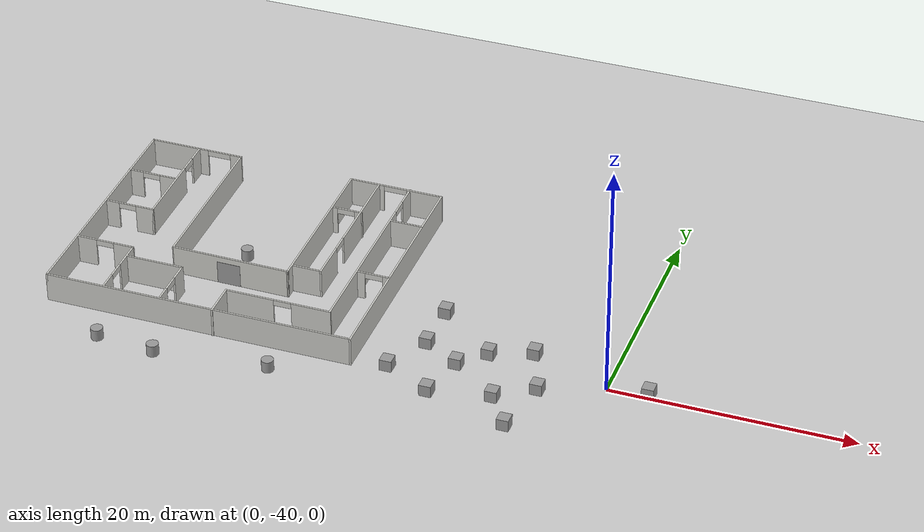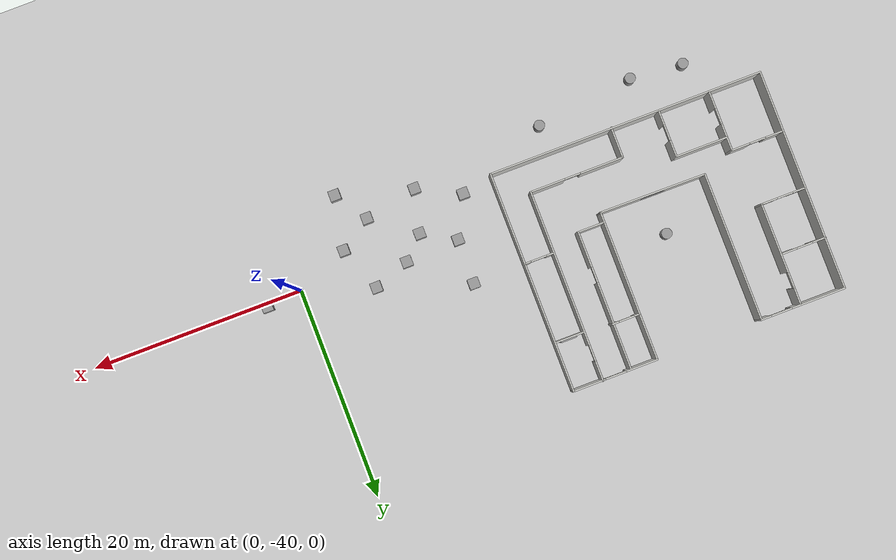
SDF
<sdf version="1.6">
 <world name="default">
  <model name="ground_plane">
   <static>1</static>
   <link name="link">
    <collision name="collision">
     <geometry><plane><normal>0 0 1</normal><size>100 100</size></plane></geometry>
     <surface><friction><ode><mu>100</mu><mu2>50</mu2></ode></friction></surface>
    </collision>
    <visual name="visual">
     <cast_shadows>0</cast_shadows>
     <geometry><plane><normal>0 0 1</normal><size>100 100</size></plane></geometry>
     <material>
      <script><uri>file://media/materials/scripts/gazebo.material</uri><name>Gazebo/Grey</name></script>
     </material>
    </visual>
   </link>
  </model>
  <model name="Multi_25_5">
   <pose>-32.8587 -33.1617 0 0 -0 0</pose>
   <link name="Door_69">
    <collision name="Door_69_Collision">
     <geometry><box><size>2 0.17 2</size></box></geometry>
     <pose>0 0 1 0 -0 0</pose>
    </collision>
    <visual name="Door_69_Visual">
     <pose>0 0 1 0 -0 0</pose>
     <geometry><box><size>2 0.17 2</size></box></geometry>
     <material>
      <script><uri>file://media/materials/scripts/gazebo.material</uri><name>Gazebo/Grey</name></script>
     </material>
    </visual>
    <pose>-0.131957 -3.62609 0 0 -0 3.13159</pose>
   </link>
   <link name="Door_82">
    <collision name="Door_82_Collision">
     <geometry><box><size>1.5 0.17 2</size></box></geometry>
     <pose>0 0 1 0 -0 0</pose>
    </collision>
    <visual name="Door_82_Visual">
     <pose>0 0 1 0 -0 0</pose>
     <geometry><box><size>1.5 0.17 2</size></box></geometry>
     <material>
      <script><uri>file://media/materials/scripts/gazebo.material</uri><name>Gazebo/Grey</name></script>
     </material>
    </visual>
    <pose>11.6853 5.93089 0 0 -0 0</pose>
   </link>
   <link name="Wall_211">
    <pose>-8.98496 10.4229 0 0 -0 0</pose>
    <visual name="Wall_211_Visual_0">
     <pose>-1.51563 0 1.25 0 -0 0</pose>
     <geometry><box><size>5.11875 0.15 2.5</size></box></geometry>
     <material>
      <script><uri>file://media/materials/scripts/gazebo.material</uri><name>Gazebo/CeilingTiled</name></script>
      <ambient>1 1 1 1</ambient>
     </material>
     <meta><layer>0</layer></meta>
    </visual>
    <collision name="Wall_211_Collision_0">
     <geometry><box><size>5.11875 0.15 2.5</size></box></geometry>
     <pose>-1.51563 0 1.25 0 -0 0</pose>
    </collision>
    <visual name="Wall_211_Visual_1">
     <pose>3.55937 0 1.25 0 -0 0</pose>
     <geometry><box><size>1.03125 0.15 2.5</size></box></geometry>
     <material>
      <script><uri>file://media/materials/scripts/gazebo.material</uri><name>Gazebo/CeilingTiled</name></script>
      <ambient>1 1 1 1</ambient>
     </material>
     <meta><layer>0</layer></meta>
    </visual>
    <collision name="Wall_211_Collision_1">
     <geometry><box><size>1.03125 0.15 2.5</size></box></geometry>
     <pose>3.55937 0 1.25 0 -0 0</pose>
    </collision>
    <visual name="Wall_211_Visual_2">
     <pose>2.04375 0 2.25 0 -0 0</pose>
     <geometry><box><size>2 0.15 0.5</size></box></geometry>
     <material>
      <script><uri>file://media/materials/scripts/gazebo.material</uri><name>Gazebo/CeilingTiled</name></script>
      <ambient>1 1 1 1</ambient>
     </material>
     <meta><layer>0</layer></meta>
    </visual>
    <collision name="Wall_211_Collision_2">
     <geometry><box><size>2 0.15 0.5</size></box></geometry>
     <pose>2.04375 0 2.25 0 -0 0</pose>
    </collision>
   </link>
   <link name="Wall_213">
    <collision name="Wall_213_Collision">
     <geometry><box><size>14.15 0.15 2.5</size></box></geometry>
     <pose>0 0 1.25 0 -0 0</pose>
    </collision>
    <visual name="Wall_213_Visual">
     <pose>0 0 1.25 0 -0 0</pose>
     <geometry><box><size>14.15 0.15 2.5</size></box></geometry>
     <material>
      <script><uri>file://media/materials/scripts/gazebo.material</uri><name>Gazebo/CeilingTiled</name></script>
      <ambient>1 1 1 1</ambient>
     </material>
     <meta><layer>0</layer></meta>
    </visual>
    <pose>-4.98496 3.42291 0 0 -0 1.5708</pose>
   </link>
   <link name="Wall_215">
    <pose>9.01504 10.4229 0 0 -0 0</pose>
    <visual name="Wall_215_Visual_0">
     <pose>-2.56473 0 1.25 0 -0 0</pose>
     <geometry><box><size>3.02055 0.15 2.5</size></box></geometry>
     <material>
      <script><uri>file://media/materials/scripts/gazebo.material</uri><name>Gazebo/CeilingTiled</name></script>
      <ambient>1 1 1 1</ambient>
     </material>
     <meta><layer>0</layer></meta>
    </visual>
    <collision name="Wall_215_Collision_0">
     <geometry><box><size>3.02055 0.15 2.5</size></box></geometry>
     <pose>-2.56473 0 1.25 0 -0 0</pose>
    </collision>
    <visual name="Wall_215_Visual_1">
     <pose>2.51028 0 1.25 0 -0 0</pose>
     <geometry><box><size>3.12945 0.15 2.5</size></box></geometry>
     <material>
      <script><uri>file://media/materials/scripts/gazebo.material</uri><name>Gazebo/CeilingTiled</name></script>
      <ambient>1 1 1 1</ambient>
     </material>
     <meta><layer>0</layer></meta>
    </visual>
    <collision name="Wall_215_Collision_1">
     <geometry><box><size>3.12945 0.15 2.5</size></box></geometry>
     <pose>2.51028 0 1.25 0 -0 0</pose>
    </collision>
    <visual name="Wall_215_Visual_2">
     <pose>-0.054451 0 2.25 0 -0 0</pose>
     <geometry><box><size>2 0.15 0.5</size></box></geometry>
     <material>
      <script><uri>file://media/materials/scripts/gazebo.material</uri><name>Gazebo/CeilingTiled</name></script>
      <ambient>1 1 1 1</ambient>
     </material>
     <meta><layer>0</layer></meta>
    </visual>
    <collision name="Wall_215_Collision_2">
     <geometry><box><size>2 0.15 0.5</size></box></geometry>
     <pose>-0.054451 0 2.25 0 -0 0</pose>
    </collision>
   </link>
   <link name="Wall_217">
    <collision name="Wall_217_Collision">
     <geometry><box><size>14.25 0.15 2.5</size></box></geometry>
     <pose>0 0 1.25 0 -0 0</pose>
    </collision>
    <visual name="Wall_217_Visual">
     <pose>0 0 1.25 0 -0 0</pose>
     <geometry><box><size>14.25 0.15 2.5</size></box></geometry>
     <material>
      <script><uri>file://media/materials/scripts/gazebo.material</uri><name>Gazebo/CeilingTiled</name></script>
      <ambient>1 1 1 1</ambient>
     </material>
     <meta><layer>0</layer></meta>
    </visual>
    <pose>5.01504 3.37291 0 0 -0 -1.5708</pose>
   </link>
   <link name="Wall_219">
    <collision name="Wall_219_Collision">
     <geometry><box><size>21 0.15 2.5</size></box></geometry>
     <pose>0 0 1.25 0 -0 0</pose>
    </collision>
    <visual name="Wall_219_Visual">
     <pose>0 0 1.25 0 -0 0</pose>
     <geometry><box><size>21 0.15 2.5</size></box></geometry>
     <material>
      <script><uri>file://media/materials/scripts/gazebo.material</uri><name>Gazebo/CeilingTiled</name></script>
      <ambient>1 1 1 1</ambient>
     </material>
     <meta><layer>0</layer></meta>
    </visual>
    <pose>-12.985 -0.002094 0 0 -0 -1.5708</pose>
   </link>
   <link name="Wall_221">
    <collision name="Wall_221_Collision">
     <geometry><box><size>26 0.15 2.5</size></box></geometry>
     <pose>0 0 1.25 0 -0 0</pose>
    </collision>
    <visual name="Wall_221_Visual">
     <pose>0 0 1.25 0 -0 0</pose>
     <geometry><box><size>26 0.15 2.5</size></box></geometry>
     <material>
      <script><uri>file://media/materials/scripts/gazebo.material</uri><name>Gazebo/CeilingTiled</name></script>
      <ambient>1 1 1 1</ambient>
     </material>
     <meta><layer>0</layer></meta>
    </visual>
    <pose>-0.059957 -10.4271 0 0 -0 0</pose>
   </link>
   <link name="Wall_223">
    <collision name="Wall_223_Collision">
     <geometry><box><size>21 0.15 2.5</size></box></geometry>
     <pose>0 0 1.25 0 -0 0</pose>
    </collision>
    <visual name="Wall_223_Visual">
     <pose>0 0 1.25 0 -0 0</pose>
     <geometry><box><size>21 0.15 2.5</size></box></geometry>
     <material>
      <script><uri>file://media/materials/scripts/gazebo.material</uri><name>Gazebo/CeilingTiled</name></script>
      <ambient>1 1 1 1</ambient>
     </material>
     <meta><layer>0</layer></meta>
    </visual>
    <pose>13.015 -0.002094 0 0 -0 -1.5708</pose>
   </link>
   <link name="Wall_225">
    <collision name="Wall_225_Collision">
     <geometry><box><size>10.1505 0.15 2.5</size></box></geometry>
     <pose>0 0 1.25 0 -0 0</pose>
    </collision>
    <visual name="Wall_225_Visual">
     <pose>0 0 1.25 0 -0 0</pose>
     <geometry><box><size>10.1505 0.15 2.5</size></box></geometry>
     <material>
      <script><uri>file://media/materials/scripts/gazebo.material</uri><name>Gazebo/CeilingTiled</name></script>
      <ambient>1 1 1 1</ambient>
     </material>
     <meta><layer>0</layer></meta>
    </visual>
    <pose>0.015043 -3.62709 0 0 -0 -0.01</pose>
   </link>
   <link name="Wall_228">
    <pose>-8.76574 5.56409 0 0 -0 -1.5708</pose>
    <visual name="Wall_228_Visual_0">
     <pose>-4.05643 0 1.25 0 -0 0</pose>
     <geometry><box><size>1.63713 0.15 2.5</size></box></geometry>
     <material>
      <script><uri>file://media/materials/scripts/gazebo.material</uri><name>Gazebo/CeilingTiled</name></script>
      <ambient>1 1 1 1</ambient>
     </material>
     <meta><layer>0</layer></meta>
    </visual>
    <collision name="Wall_228_Collision_0">
     <geometry><box><size>1.63713 0.15 2.5</size></box></geometry>
     <pose>-4.05643 0 1.25 0 -0 0</pose>
    </collision>
    <visual name="Wall_228_Visual_1">
     <pose>1.56857 0 1.25 0 -0 0</pose>
     <geometry><box><size>6.61287 0.15 2.5</size></box></geometry>
     <material>
      <script><uri>file://media/materials/scripts/gazebo.material</uri><name>Gazebo/CeilingTiled</name></script>
      <ambient>1 1 1 1</ambient>
     </material>
     <meta><layer>0</layer></meta>
    </visual>
    <collision name="Wall_228_Collision_1">
     <geometry><box><size>6.61287 0.15 2.5</size></box></geometry>
     <pose>1.56857 0 1.25 0 -0 0</pose>
    </collision>
    <visual name="Wall_228_Visual_2">
     <pose>-2.48787 0 2.25 0 -0 0</pose>
     <geometry><box><size>1.5 0.15 0.5</size></box></geometry>
     <material>
      <script><uri>file://media/materials/scripts/gazebo.material</uri><name>Gazebo/CeilingTiled</name></script>
      <ambient>1 1 1 1</ambient>
     </material>
     <meta><layer>0</layer></meta>
    </visual>
    <collision name="Wall_228_Collision_2">
     <geometry><box><size>1.5 0.15 0.5</size></box></geometry>
     <pose>-2.48787 0 2.25 0 -0 0</pose>
    </collision>
   </link>
   <link name="Wall_229">
    <pose>-10.8157 0.764087 0 0 -0 3.14159</pose>
    <visual name="Wall_229_Visual_0">
     <pose>-1.33413 0 1.25 0 -0 0</pose>
     <geometry><box><size>1.58174 0.15 2.5</size></box></geometry>
     <material>
      <script><uri>file://media/materials/scripts/gazebo.material</uri><name>Gazebo/CeilingTiled</name></script>
      <ambient>1 1 1 1</ambient>
     </material>
     <meta><layer>0</layer></meta>
    </visual>
    <collision name="Wall_229_Collision_0">
     <geometry><box><size>1.58174 0.15 2.5</size></box></geometry>
     <pose>-1.33413 0 1.25 0 -0 0</pose>
    </collision>
    <visual name="Wall_229_Visual_1">
     <pose>1.54087 0 1.25 0 -0 0</pose>
     <geometry><box><size>1.16826 0.15 2.5</size></box></geometry>
     <material>
      <script><uri>file://media/materials/scripts/gazebo.material</uri><name>Gazebo/CeilingTiled</name></script>
      <ambient>1 1 1 1</ambient>
     </material>
     <meta><layer>0</layer></meta>
    </visual>
    <collision name="Wall_229_Collision_1">
     <geometry><box><size>1.16826 0.15 2.5</size></box></geometry>
     <pose>1.54087 0 1.25 0 -0 0</pose>
    </collision>
    <visual name="Wall_229_Visual_2">
     <pose>0.206745 0 2.25 0 -0 0</pose>
     <geometry><box><size>1.5 0.15 0.5</size></box></geometry>
     <material>
      <script><uri>file://media/materials/scripts/gazebo.material</uri><name>Gazebo/CeilingTiled</name></script>
      <ambient>1 1 1 1</ambient>
     </material>
     <meta><layer>0</layer></meta>
    </visual>
    <collision name="Wall_229_Collision_2">
     <geometry><box><size>1.5 0.15 0.5</size></box></geometry>
     <pose>0.206745 0 2.25 0 -0 0</pose>
    </collision>
   </link>
   <link name="Wall_231">
    <pose>-10.965 5.58324 0 0 -0 0</pose>
    <visual name="Wall_231_Visual_0">
     <pose>-1.46622 0 1.25 0 -0 0</pose>
     <geometry><box><size>1.31756 0.15 2.5</size></box></geometry>
     <material>
      <script><uri>file://media/materials/scripts/gazebo.material</uri><name>Gazebo/CeilingTiled</name></script>
      <ambient>1 1 1 1</ambient>
     </material>
     <meta><layer>0</layer></meta>
    </visual>
    <collision name="Wall_231_Collision_0">
     <geometry><box><size>1.31756 0.15 2.5</size></box></geometry>
     <pose>-1.46622 0 1.25 0 -0 0</pose>
    </collision>
    <visual name="Wall_231_Visual_1">
     <pose>1.40878 0 1.25 0 -0 0</pose>
     <geometry><box><size>1.43244 0.15 2.5</size></box></geometry>
     <material>
      <script><uri>file://media/materials/scripts/gazebo.material</uri><name>Gazebo/CeilingTiled</name></script>
      <ambient>1 1 1 1</ambient>
     </material>
     <meta><layer>0</layer></meta>
    </visual>
    <collision name="Wall_231_Collision_1">
     <geometry><box><size>1.43244 0.15 2.5</size></box></geometry>
     <pose>1.40878 0 1.25 0 -0 0</pose>
    </collision>
    <visual name="Wall_231_Visual_2">
     <pose>-0.057438 0 2.25 0 -0 0</pose>
     <geometry><box><size>1.5 0.15 0.5</size></box></geometry>
     <material>
      <script><uri>file://media/materials/scripts/gazebo.material</uri><name>Gazebo/CeilingTiled</name></script>
      <ambient>1 1 1 1</ambient>
     </material>
     <meta><layer>0</layer></meta>
    </visual>
    <collision name="Wall_231_Collision_2">
     <geometry><box><size>1.5 0.15 0.5</size></box></geometry>
     <pose>-0.057438 0 2.25 0 -0 0</pose>
    </collision>
   </link>
   <link name="Wall_233">
    <collision name="Wall_233_Collision">
     <geometry><box><size>2.5 0.15 2.5</size></box></geometry>
     <pose>0 0 1.25 0 -0 0</pose>
    </collision>
    <visual name="Wall_233_Visual">
     <pose>0 0 1.25 0 -0 0</pose>
     <geometry><box><size>2.5 0.15 2.5</size></box></geometry>
     <material>
      <script><uri>file://media/materials/scripts/gazebo.material</uri><name>Gazebo/CeilingTiled</name></script>
      <ambient>1 1 1 1</ambient>
     </material>
     <meta><layer>0</layer></meta>
    </visual>
    <pose>6.33798 -2.74269 0 0 -0 0</pose>
   </link>
   <link name="Wall_234">
    <pose>7.51298 3.80731 0 0 -0 1.5708</pose>
    <visual name="Wall_234_Visual_0">
     <pose>-4.90273 0 1.25 0 -0 0</pose>
     <geometry><box><size>3.44454 0.15 2.5</size></box></geometry>
     <material>
      <script><uri>file://media/materials/scripts/gazebo.material</uri><name>Gazebo/CeilingTiled</name></script>
      <ambient>1 1 1 1</ambient>
     </material>
     <meta><layer>0</layer></meta>
    </visual>
    <collision name="Wall_234_Collision_0">
     <geometry><box><size>3.44454 0.15 2.5</size></box></geometry>
     <pose>-4.90273 0 1.25 0 -0 0</pose>
    </collision>
    <visual name="Wall_234_Visual_1">
     <pose>2.47227 0 1.25 0 -0 0</pose>
     <geometry><box><size>8.30546 0.15 2.5</size></box></geometry>
     <material>
      <script><uri>file://media/materials/scripts/gazebo.material</uri><name>Gazebo/CeilingTiled</name></script>
      <ambient>1 1 1 1</ambient>
     </material>
     <meta><layer>0</layer></meta>
    </visual>
    <collision name="Wall_234_Collision_1">
     <geometry><box><size>8.30546 0.15 2.5</size></box></geometry>
     <pose>2.47227 0 1.25 0 -0 0</pose>
    </collision>
    <visual name="Wall_234_Visual_2">
     <pose>-2.43046 0 2.25 0 -0 0</pose>
     <geometry><box><size>1.5 0.15 0.5</size></box></geometry>
     <material>
      <script><uri>file://media/materials/scripts/gazebo.material</uri><name>Gazebo/CeilingTiled</name></script>
      <ambient>1 1 1 1</ambient>
     </material>
     <meta><layer>0</layer></meta>
    </visual>
    <collision name="Wall_234_Collision_2">
     <geometry><box><size>1.5 0.15 0.5</size></box></geometry>
     <pose>-2.43046 0 2.25 0 -0 0</pose>
    </collision>
   </link>
   <link name="Wall_236">
    <pose>10.2182 1.425 0 0 -0 -1.5708</pose>
    <visual name="Wall_236_Visual_0">
     <pose>-8.1574 0 1.25 0 -0 0</pose>
     <geometry><box><size>1.9352 0.15 2.5</size></box></geometry>
     <material>
      <script><uri>file://media/materials/scripts/gazebo.material</uri><name>Gazebo/CeilingTiled</name></script>
      <ambient>1 1 1 1</ambient>
     </material>
     <meta><layer>0</layer></meta>
    </visual>
    <collision name="Wall_236_Collision_0">
     <geometry><box><size>1.9352 0.15 2.5</size></box></geometry>
     <pose>-8.1574 0 1.25 0 -0 0</pose>
    </collision>
    <visual name="Wall_236_Visual_1">
     <pose>1.7176 0 1.25 0 -0 0</pose>
     <geometry><box><size>14.8148 0.15 2.5</size></box></geometry>
     <material>
      <script><uri>file://media/materials/scripts/gazebo.material</uri><name>Gazebo/CeilingTiled</name></script>
      <ambient>1 1 1 1</ambient>
     </material>
     <meta><layer>0</layer></meta>
    </visual>
    <collision name="Wall_236_Collision_1">
     <geometry><box><size>14.8148 0.15 2.5</size></box></geometry>
     <pose>1.7176 0 1.25 0 -0 0</pose>
    </collision>
    <visual name="Wall_236_Visual_2">
     <pose>-6.4398 0 2.25 0 -0 0</pose>
     <geometry><box><size>1.5 0.15 0.5</size></box></geometry>
     <material>
      <script><uri>file://media/materials/scripts/gazebo.material</uri><name>Gazebo/CeilingTiled</name></script>
      <ambient>1 1 1 1</ambient>
     </material>
     <meta><layer>0</layer></meta>
    </visual>
    <collision name="Wall_236_Collision_2">
     <geometry><box><size>1.5 0.15 0.5</size></box></geometry>
     <pose>-6.4398 0 2.25 0 -0 0</pose>
    </collision>
   </link>
   <link name="Wall_237">
    <pose>5.79317 -7.625 0 0 -0 3.14159</pose>
    <visual name="Wall_237_Visual_0">
     <pose>-2.82619 0 1.25 0 -0 0</pose>
     <geometry><box><size>3.34763 0.15 2.5</size></box></geometry>
     <material>
      <script><uri>file://media/materials/scripts/gazebo.material</uri><name>Gazebo/CeilingTiled</name></script>
      <ambient>1 1 1 1</ambient>
     </material>
     <meta><layer>0</layer></meta>
    </visual>
    <collision name="Wall_237_Collision_0">
     <geometry><box><size>3.34763 0.15 2.5</size></box></geometry>
     <pose>-2.82619 0 1.25 0 -0 0</pose>
    </collision>
    <visual name="Wall_237_Visual_1">
     <pose>2.42381 0 1.25 0 -0 0</pose>
     <geometry><box><size>4.15237 0.15 2.5</size></box></geometry>
     <material>
      <script><uri>file://media/materials/scripts/gazebo.material</uri><name>Gazebo/CeilingTiled</name></script>
      <ambient>1 1 1 1</ambient>
     </material>
     <meta><layer>0</layer></meta>
    </visual>
    <collision name="Wall_237_Collision_1">
     <geometry><box><size>4.15237 0.15 2.5</size></box></geometry>
     <pose>2.42381 0 1.25 0 -0 0</pose>
    </collision>
    <visual name="Wall_237_Visual_2">
     <pose>-0.40237 0 2.25 0 -0 0</pose>
     <geometry><box><size>1.5 0.15 0.5</size></box></geometry>
     <material>
      <script><uri>file://media/materials/scripts/gazebo.material</uri><name>Gazebo/CeilingTiled</name></script>
      <ambient>1 1 1 1</ambient>
     </material>
     <meta><layer>0</layer></meta>
    </visual>
    <collision name="Wall_237_Collision_2">
     <geometry><box><size>1.5 0.15 0.5</size></box></geometry>
     <pose>-0.40237 0 2.25 0 -0 0</pose>
    </collision>
   </link>
   <link name="Wall_238">
    <collision name="Wall_238_Collision">
     <geometry><box><size>3 0.15 2.5</size></box></geometry>
     <pose>0 0 1.25 0 -0 0</pose>
    </collision>
    <visual name="Wall_238_Visual">
     <pose>0 0 1.25 0 -0 0</pose>
     <geometry><box><size>3 0.15 2.5</size></box></geometry>
     <material>
      <script><uri>file://media/materials/scripts/gazebo.material</uri><name>Gazebo/CeilingTiled</name></script>
      <ambient>1 1 1 1</ambient>
     </material>
     <meta><layer>0</layer></meta>
    </visual>
    <pose>1.36817 -9.05 0 0 -0 -1.5708</pose>
   </link>
   <link name="Wall_240">
    <pose>-10.4738 -4.71873 0 0 -0 0</pose>
    <visual name="Wall_240_Visual_0">
     <pose>-1.6498 0 1.25 0 -0 0</pose>
     <geometry><box><size>1.7004 0.15 2.5</size></box></geometry>
     <material>
      <script><uri>file://media/materials/scripts/gazebo.material</uri><name>Gazebo/CeilingTiled</name></script>
      <ambient>1 1 1 1</ambient>
     </material>
     <meta><layer>0</layer></meta>
    </visual>
    <collision name="Wall_240_Collision_0">
     <geometry><box><size>1.7004 0.15 2.5</size></box></geometry>
     <pose>-1.6498 0 1.25 0 -0 0</pose>
    </collision>
    <visual name="Wall_240_Visual_1">
     <pose>1.6002 0 1.25 0 -0 0</pose>
     <geometry><box><size>1.7996 0.15 2.5</size></box></geometry>
     <material>
      <script><uri>file://media/materials/scripts/gazebo.material</uri><name>Gazebo/CeilingTiled</name></script>
      <ambient>1 1 1 1</ambient>
     </material>
     <meta><layer>0</layer></meta>
    </visual>
    <collision name="Wall_240_Collision_1">
     <geometry><box><size>1.7996 0.15 2.5</size></box></geometry>
     <pose>1.6002 0 1.25 0 -0 0</pose>
    </collision>
    <visual name="Wall_240_Visual_2">
     <pose>-0.049598 0 2.25 0 -0 0</pose>
     <geometry><box><size>1.5 0.15 0.5</size></box></geometry>
     <material>
      <script><uri>file://media/materials/scripts/gazebo.material</uri><name>Gazebo/CeilingTiled</name></script>
      <ambient>1 1 1 1</ambient>
     </material>
     <meta><layer>0</layer></meta>
    </visual>
    <collision name="Wall_240_Collision_2">
     <geometry><box><size>1.5 0.15 0.5</size></box></geometry>
     <pose>-0.049598 0 2.25 0 -0 0</pose>
    </collision>
   </link>
   <link name="Wall_241">
    <pose>-8.04881 -7.51873 0 0 -0 -1.5708</pose>
    <visual name="Wall_241_Visual_0">
     <pose>-1.55029 0 1.25 0 -0 0</pose>
     <geometry><box><size>2.64942 0.15 2.5</size></box></geometry>
     <material>
      <script><uri>file://media/materials/scripts/gazebo.material</uri><name>Gazebo/CeilingTiled</name></script>
      <ambient>1 1 1 1</ambient>
     </material>
     <meta><layer>0</layer></meta>
    </visual>
    <collision name="Wall_241_Collision_0">
     <geometry><box><size>2.64942 0.15 2.5</size></box></geometry>
     <pose>-1.55029 0 1.25 0 -0 0</pose>
    </collision>
    <visual name="Wall_241_Visual_1">
     <pose>2.07471 0 1.25 0 -0 0</pose>
     <geometry><box><size>1.60058 0.15 2.5</size></box></geometry>
     <material>
      <script><uri>file://media/materials/scripts/gazebo.material</uri><name>Gazebo/CeilingTiled</name></script>
      <ambient>1 1 1 1</ambient>
     </material>
     <meta><layer>0</layer></meta>
    </visual>
    <collision name="Wall_241_Collision_1">
     <geometry><box><size>1.60058 0.15 2.5</size></box></geometry>
     <pose>2.07471 0 1.25 0 -0 0</pose>
    </collision>
    <visual name="Wall_241_Visual_2">
     <pose>0.524425 0 2.25 0 -0 0</pose>
     <geometry><box><size>1.5 0.15 0.5</size></box></geometry>
     <material>
      <script><uri>file://media/materials/scripts/gazebo.material</uri><name>Gazebo/CeilingTiled</name></script>
      <ambient>1 1 1 1</ambient>
     </material>
     <meta><layer>0</layer></meta>
    </visual>
    <collision name="Wall_241_Collision_2">
     <geometry><box><size>1.5 0.15 0.5</size></box></geometry>
     <pose>0.524425 0 2.25 0 -0 0</pose>
    </collision>
   </link>
   <link name="Wall_243">
    <pose>6.31189 6.05785 0 0 -0 0</pose>
    <visual name="Wall_243_Visual_0">
     <pose>-1.08948 0 1.25 0 -0 0</pose>
     <geometry><box><size>0.571036 0.15 2.5</size></box></geometry>
     <material>
      <script><uri>file://media/materials/scripts/gazebo.material</uri><name>Gazebo/CeilingTiled</name></script>
      <ambient>1 1 1 1</ambient>
     </material>
     <meta><layer>0</layer></meta>
    </visual>
    <collision name="Wall_243_Collision_0">
     <geometry><box><size>0.571036 0.15 2.5</size></box></geometry>
     <pose>-1.08948 0 1.25 0 -0 0</pose>
    </collision>
    <visual name="Wall_243_Visual_1">
     <pose>1.03552 0 1.25 0 -0 0</pose>
     <geometry><box><size>0.678964 0.15 2.5</size></box></geometry>
     <material>
      <script><uri>file://media/materials/scripts/gazebo.material</uri><name>Gazebo/CeilingTiled</name></script>
      <ambient>1 1 1 1</ambient>
     </material>
     <meta><layer>0</layer></meta>
    </visual>
    <collision name="Wall_243_Collision_1">
     <geometry><box><size>0.678964 0.15 2.5</size></box></geometry>
     <pose>1.03552 0 1.25 0 -0 0</pose>
    </collision>
    <visual name="Wall_243_Visual_2">
     <pose>-0.053964 0 2.25 0 -0 0</pose>
     <geometry><box><size>1.5 0.15 0.5</size></box></geometry>
     <material>
      <script><uri>file://media/materials/scripts/gazebo.material</uri><name>Gazebo/CeilingTiled</name></script>
      <ambient>1 1 1 1</ambient>
     </material>
     <meta><layer>0</layer></meta>
    </visual>
    <collision name="Wall_243_Collision_2">
     <geometry><box><size>1.5 0.15 0.5</size></box></geometry>
     <pose>-0.053964 0 2.25 0 -0 0</pose>
    </collision>
   </link>
   <link name="Wall_245">
    <collision name="Wall_245_Collision">
     <geometry><box><size>2.75 0.15 2.5</size></box></geometry>
     <pose>0 0 1.25 0 -0 0</pose>
    </collision>
    <visual name="Wall_245_Visual">
     <pose>0 0 1.25 0 -0 0</pose>
     <geometry><box><size>2.75 0.15 2.5</size></box></geometry>
     <material>
      <script><uri>file://media/materials/scripts/gazebo.material</uri><name>Gazebo/CeilingTiled</name></script>
      <ambient>1 1 1 1</ambient>
     </material>
     <meta><layer>0</layer></meta>
    </visual>
    <pose>11.6747 5.80238 0 0 -0 0</pose>
   </link>
   <link name="Wall_247">
    <pose>11.6285 -1.77932 0 0 -0 0</pose>
    <visual name="Wall_247_Visual_0">
     <pose>-1.03408 0 1.25 0 -0 0</pose>
     <geometry><box><size>0.681835 0.15 2.5</size></box></geometry>
     <material>
      <script><uri>file://media/materials/scripts/gazebo.material</uri><name>Gazebo/CeilingTiled</name></script>
      <ambient>1 1 1 1</ambient>
     </material>
     <meta><layer>0</layer></meta>
    </visual>
    <collision name="Wall_247_Collision_0">
     <geometry><box><size>0.681835 0.15 2.5</size></box></geometry>
     <pose>-1.03408 0 1.25 0 -0 0</pose>
    </collision>
    <visual name="Wall_247_Visual_1">
     <pose>1.09092 0 1.25 0 -0 0</pose>
     <geometry><box><size>0.568165 0.15 2.5</size></box></geometry>
     <material>
      <script><uri>file://media/materials/scripts/gazebo.material</uri><name>Gazebo/CeilingTiled</name></script>
      <ambient>1 1 1 1</ambient>
     </material>
     <meta><layer>0</layer></meta>
    </visual>
    <collision name="Wall_247_Collision_1">
     <geometry><box><size>0.568165 0.15 2.5</size></box></geometry>
     <pose>1.09092 0 1.25 0 -0 0</pose>
    </collision>
    <visual name="Wall_247_Visual_2">
     <pose>0.056835 0 2.25 0 -0 0</pose>
     <geometry><box><size>1.5 0.15 0.5</size></box></geometry>
     <material>
      <script><uri>file://media/materials/scripts/gazebo.material</uri><name>Gazebo/CeilingTiled</name></script>
      <ambient>1 1 1 1</ambient>
     </material>
     <meta><layer>0</layer></meta>
    </visual>
    <collision name="Wall_247_Collision_2">
     <geometry><box><size>1.5 0.15 0.5</size></box></geometry>
     <pose>0.056835 0 2.25 0 -0 0</pose>
    </collision>
   </link>
   <link name="Wall_249">
    <collision name="Wall_249_Collision">
     <geometry><box><size>5 0.15 2.5</size></box></geometry>
     <pose>0 0 1.25 0 -0 0</pose>
    </collision>
    <visual name="Wall_249_Visual">
     <pose>0 0 1.25 0 -0 0</pose>
     <geometry><box><size>5 0.15 2.5</size></box></geometry>
     <material>
      <script><uri>file://media/materials/scripts/gazebo.material</uri><name>Gazebo/CeilingTiled</name></script>
      <ambient>1 1 1 1</ambient>
     </material>
     <meta><layer>0</layer></meta>
    </visual>
    <pose>-5.6049 -5.97415 0 0 -0 0</pose>
   </link>
   <link name="Wall_250">
    <pose>-3.1799 -8.14915 0 0 -0 -1.5708</pose>
    <visual name="Wall_250_Visual_0">
     <pose>-1.42823 0 1.25 0 -0 0</pose>
     <geometry><box><size>1.64354 0.15 2.5</size></box></geometry>
     <material>
      <script><uri>file://media/materials/scripts/gazebo.material</uri><name>Gazebo/CeilingTiled</name></script>
      <ambient>1 1 1 1</ambient>
     </material>
     <meta><layer>0</layer></meta>
    </visual>
    <collision name="Wall_250_Collision_0">
     <geometry><box><size>1.64354 0.15 2.5</size></box></geometry>
     <pose>-1.42823 0 1.25 0 -0 0</pose>
    </collision>
    <visual name="Wall_250_Visual_1">
     <pose>1.57177 0 1.25 0 -0 0</pose>
     <geometry><box><size>1.35646 0.15 2.5</size></box></geometry>
     <material>
      <script><uri>file://media/materials/scripts/gazebo.material</uri><name>Gazebo/CeilingTiled</name></script>
      <ambient>1 1 1 1</ambient>
     </material>
     <meta><layer>0</layer></meta>
    </visual>
    <collision name="Wall_250_Collision_1">
     <geometry><box><size>1.35646 0.15 2.5</size></box></geometry>
     <pose>1.57177 0 1.25 0 -0 0</pose>
    </collision>
    <visual name="Wall_250_Visual_2">
     <pose>0.143542 0 2.25 0 -0 0</pose>
     <geometry><box><size>1.5 0.15 0.5</size></box></geometry>
     <material>
      <script><uri>file://media/materials/scripts/gazebo.material</uri><name>Gazebo/CeilingTiled</name></script>
      <ambient>1 1 1 1</ambient>
     </material>
     <meta><layer>0</layer></meta>
    </visual>
    <collision name="Wall_250_Collision_2">
     <geometry><box><size>1.5 0.15 0.5</size></box></geometry>
     <pose>0.143542 0 2.25 0 -0 0</pose>
    </collision>
   </link>
   <static>1</static>
  </model>
  <model name="unit_box_28_clone_61">
   <pose>-6.59476 -37.7977 0.500495 -1e-06 -9e-06 -0.000293</pose>
   <link name="link">
    <inertial>
     <mass>1</mass>
     <inertia>
      <ixx>0.166667</ixx>
      <ixy>0</ixy>
      <ixz>0</ixz>
      <iyy>0.166667</iyy>
      <iyz>0</iyz>
      <izz>0.166667</izz>
     </inertia>
    </inertial>
    <collision name="collision"><geometry><box><size>1 1 1</size></box></geometry></collision>
    <visual name="visual">
     <geometry><box><size>1 1 1</size></box></geometry>
     <material>
      <script><name>Gazebo/Grey</name><uri>file://media/materials/scripts/gazebo.material</uri></script>
     </material>
    </visual>
   </link>
  </model>
  <model name="unit_box_28_clone_62">
   <pose>-5 -42 0.499995 0 1e-05 0</pose>
   <link name="link">
    <inertial>
     <mass>1</mass>
     <inertia>
      <ixx>0.166667</ixx>
      <ixy>0</ixy>
      <ixz>0</ixz>
      <iyy>0.166667</iyy>
      <iyz>0</iyz>
      <izz>0.166667</izz>
     </inertia>
    </inertial>
    <collision name="collision"><geometry><box><size>1 1 1</size></box></geometry></collision>
    <visual name="visual">
     <geometry><box><size>1 1 1</size></box></geometry>
     <material>
      <script><name>Gazebo/Grey</name><uri>file://media/materials/scripts/gazebo.material</uri></script>
     </material>
    </visual>
   </link>
  </model>
  <model name="unit_box_28_clone_63">
   <pose>-8 -44 0.499995 0 1e-05 0</pose>
   <link name="link">
    <inertial>
     <mass>1</mass>
     <inertia>
      <ixx>0.166667</ixx>
      <ixy>0</ixy>
      <ixz>0</ixz>
      <iyy>0.166667</iyy>
      <iyz>0</iyz>
      <izz>0.166667</izz>
     </inertia>
    </inertial>
    <collision name="collision"><geometry><box><size>1 1 1</size></box></geometry></collision>
    <visual name="visual">
     <geometry><box><size>1 1 1</size></box></geometry>
     <material>
      <script><name>Gazebo/Grey</name><uri>file://media/materials/scripts/gazebo.material</uri></script>
     </material>
    </visual>
   </link>
  </model>
  <model name="unit_box_28_clone_64">
   <pose>-6 -47 0.499995 0 1e-05 0</pose>
   <link name="link">
    <inertial>
     <mass>1</mass>
     <inertia>
      <ixx>0.166667</ixx>
      <ixy>0</ixy>
      <ixz>0</ixz>
      <iyy>0.166667</iyy>
      <iyz>0</iyz>
      <izz>0.166667</izz>
     </inertia>
    </inertial>
    <collision name="collision"><geometry><box><size>1 1 1</size></box></geometry></collision>
    <visual name="visual">
     <geometry><box><size>1 1 1</size></box></geometry>
     <material>
      <script><name>Gazebo/Grey</name><uri>file://media/materials/scripts/gazebo.material</uri></script>
     </material>
    </visual>
   </link>
  </model>
  <model name="unit_box_28_clone_65">
   <pose>-10 -39 0.499995 0 1e-05 0</pose>
   <link name="link">
    <inertial>
     <mass>1</mass>
     <inertia>
      <ixx>0.166667</ixx>
      <ixy>0</ixy>
      <ixz>0</ixz>
      <iyy>0.166667</iyy>
      <iyz>0</iyz>
      <izz>0.166667</izz>
     </inertia>
    </inertial>
    <collision name="collision"><geometry><box><size>1 1 1</size></box></geometry></collision>
    <visual name="visual">
     <geometry><box><size>1 1 1</size></box></geometry>
     <material>
      <script><name>Gazebo/Grey</name><uri>file://media/materials/scripts/gazebo.material</uri></script>
     </material>
    </visual>
   </link>
  </model>
  <model name="unit_box_28_clone_66">
   <pose>-13 -45 0.5005 -0 -0 -0</pose>
   <link name="link">
    <inertial>
     <mass>1</mass>
     <inertia>
      <ixx>0.166667</ixx>
      <ixy>0</ixy>
      <ixz>0</ixz>
      <iyy>0.166667</iyy>
      <iyz>0</iyz>
      <izz>0.166667</izz>
     </inertia>
    </inertial>
    <collision name="collision"><geometry><box><size>1 1 1</size></box></geometry></collision>
    <visual name="visual">
     <geometry><box><size>1 1 1</size></box></geometry>
     <material>
      <script><name>Gazebo/Grey</name><uri>file://media/materials/scripts/gazebo.material</uri></script>
     </material>
    </visual>
   </link>
  </model>
  <model name="unit_box_28_clone_67">
   <pose>-15.0786 -39.232 0.5005 -0 -0 -0</pose>
   <link name="link">
    <inertial>
     <mass>1</mass>
     <inertia>
      <ixx>0.166667</ixx>
      <ixy>0</ixy>
      <ixz>0</ixz>
      <iyy>0.166667</iyy>
      <iyz>0</iyz>
      <izz>0.166667</izz>
     </inertia>
    </inertial>
    <collision name="collision"><geometry><box><size>1 1 1</size></box></geometry></collision>
    <visual name="visual">
     <geometry><box><size>1 1 1</size></box></geometry>
     <material>
      <script><name>Gazebo/Grey</name><uri>file://media/materials/scripts/gazebo.material</uri></script>
     </material>
    </visual>
   </link>
  </model>
  <model name="unit_box_28_clone_68">
   <pose>-17 -43 0.5005 -0 -0 -0</pose>
   <link name="link">
    <inertial>
     <mass>1</mass>
     <inertia>
      <ixx>0.166667</ixx>
      <ixy>0</ixy>
      <ixz>0</ixz>
      <iyy>0.166667</iyy>
      <iyz>0</iyz>
      <izz>0.166667</izz>
     </inertia>
    </inertial>
    <collision name="collision"><geometry><box><size>1 1 1</size></box></geometry></collision>
    <visual name="visual">
     <geometry><box><size>1 1 1</size></box></geometry>
     <material>
      <script><name>Gazebo/Grey</name><uri>file://media/materials/scripts/gazebo.material</uri></script>
     </material>
    </visual>
   </link>
  </model>
  <model name="unit_box_28_clone_69">
   <pose>-12 -41 0.5005 -0 -0 -0</pose>
   <link name="link">
    <inertial>
     <mass>1</mass>
     <inertia>
      <ixx>0.166667</ixx>
      <ixy>0</ixy>
      <ixz>0</ixz>
      <iyy>0.166667</iyy>
      <iyz>0</iyz>
      <izz>0.166667</izz>
     </inertia>
    </inertial>
    <collision name="collision"><geometry><box><size>1 1 1</size></box></geometry></collision>
    <visual name="visual">
     <geometry><box><size>1 1 1</size></box></geometry>
     <material>
      <script><name>Gazebo/Grey</name><uri>file://media/materials/scripts/gazebo.material</uri></script>
     </material>
    </visual>
   </link>
  </model>
  <model name="unit_box_28_clone_71">
   <pose>-15 -35 0.5005 -0 -0 -0</pose>
   <link name="link">
    <inertial>
     <mass>1</mass>
     <inertia>
      <ixx>0.166667</ixx>
      <ixy>0</ixy>
      <ixz>0</ixz>
      <iyy>0.166667</iyy>
      <iyz>0</iyz>
      <izz>0.166667</izz>
     </inertia>
    </inertial>
    <collision name="collision"><geometry><box><size>1 1 1</size></box></geometry></collision>
    <visual name="visual">
     <geometry><box><size>1 1 1</size></box></geometry>
     <material>
      <script><name>Gazebo/Grey</name><uri>file://media/materials/scripts/gazebo.material</uri></script>
     </material>
    </visual>
   </link>
  </model>
  <model name="unit_cylinder_11_clone_33">
   <pose>-33 -33 0.499991 -0 -0 -0</pose>
   <link name="link">
    <inertial>
     <mass>1</mass>
     <inertia><ixx>0.145833</ixx><ixy>0</ixy><ixz>0</ixz><iyy>0.145833</iyy><iyz>0</iyz><izz>0.125</izz></inertia>
    </inertial>
    <collision name="collision">
     <geometry><cylinder><radius>0.5</radius><length>1</length></cylinder></geometry>
    </collision>
    <visual name="visual">
     <geometry><cylinder><radius>0.5</radius><length>1</length></cylinder></geometry>
     <material>
      <script><name>Gazebo/Grey</name><uri>file://media/materials/scripts/gazebo.material</uri></script>
     </material>
    </visual>
   </link>
  </model>
  <model name="unit_cylinder_11_clone_36">
   <pose>-25.71 -46.3426 0.499991 -0 -0 -0</pose>
   <link name="link">
    <inertial>
     <mass>1</mass>
     <inertia><ixx>0.145833</ixx><ixy>0</ixy><ixz>0</ixz><iyy>0.145833</iyy><iyz>0</iyz><izz>0.125</izz></inertia>
    </inertial>
    <collision name="collision">
     <geometry><cylinder><radius>0.5</radius><length>1</length></cylinder></geometry>
    </collision>
    <visual name="visual">
     <geometry><cylinder><radius>0.5</radius><length>1</length></cylinder></geometry>
     <material>
      <script><name>Gazebo/Grey</name><uri>file://media/materials/scripts/gazebo.material</uri></script>
     </material>
    </visual>
   </link>
  </model>
  <model name="unit_cylinder_11_clone_37">
   <pose>-35 -47.4446 0.499991 -0 -0 -0</pose>
   <link name="link">
    <inertial>
     <mass>1</mass>
     <inertia><ixx>0.145833</ixx><ixy>0</ixy><ixz>0</ixz><iyy>0.145833</iyy><iyz>0</iyz><izz>0.125</izz></inertia>
    </inertial>
    <collision name="collision">
     <geometry><cylinder><radius>0.5</radius><length>1</length></cylinder></geometry>
    </collision>
    <visual name="visual">
     <geometry><cylinder><radius>0.5</radius><length>1</length></cylinder></geometry>
     <material>
      <script><name>Gazebo/Grey</name><uri>file://media/materials/scripts/gazebo.material</uri></script>
     </material>
    </visual>
   </link>
  </model>
  <model name="unit_cylinder_11_clone_38">
   <pose>-40 -47 0.5 0 -0 0</pose>
   <link name="link">
    <inertial>
     <mass>1</mass>
     <inertia><ixx>0.145833</ixx><ixy>0</ixy><ixz>0</ixz><iyy>0.145833</iyy><iyz>0</iyz><izz>0.125</izz></inertia>
    </inertial>
    <collision name="collision">
     <geometry><cylinder><radius>0.5</radius><length>1</length></cylinder></geometry>
    </collision>
    <visual name="visual">
     <geometry><cylinder><radius>0.5</radius><length>1</length></cylinder></geometry>
     <material>
      <script><name>Gazebo/Grey</name><uri>file://media/materials/scripts/gazebo.material</uri></script>
     </material>
    </visual>
   </link>
  </model>
  <model name="unit_box_28_clone_50_clone_22">
   <pose>3.28967 -39.6852 0.5 0 -0 0</pose>
   <link name="link">
    <inertial>
     <mass>1</mass>
     <inertia>
      <ixx>0.166667</ixx>
      <ixy>0</ixy>
      <ixz>0</ixz>
      <iyy>0.166667</iyy>
      <iyz>0</iyz>
      <izz>0.166667</izz>
     </inertia>
    </inertial>
    <collision name="collision"><geometry><box><size>1 1 1</size></box></geometry></collision>
    <visual name="visual">
     <geometry><box><size>1 1 1</size></box></geometry>
     <material>
      <script><name>Gazebo/Grey</name><uri>file://media/materials/scripts/gazebo.material</uri></script>
     </material>
    </visual>
   </link>
  </model>
 </world>
</sdf>
